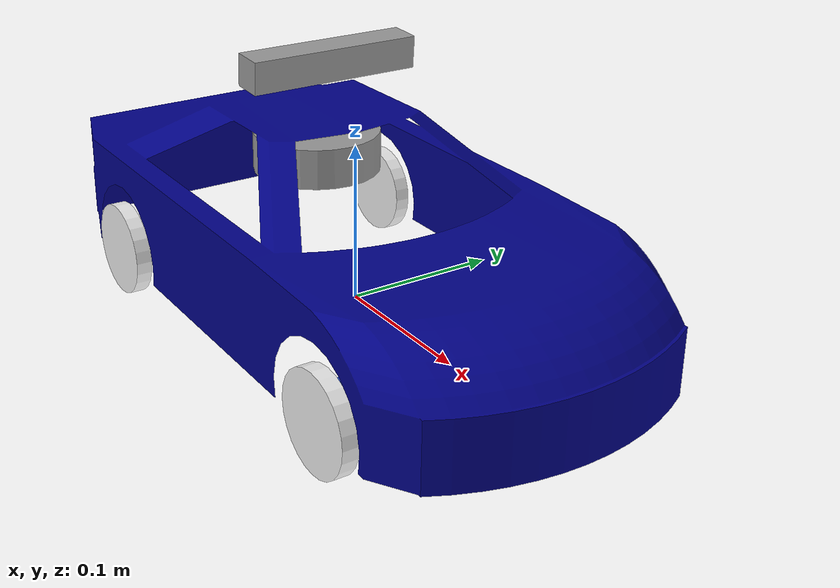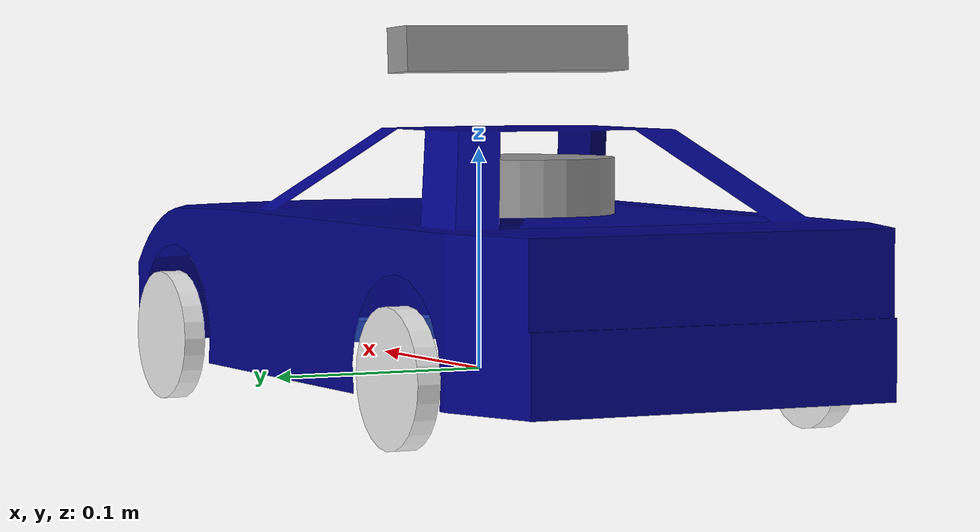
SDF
<sdf version='1.3'>
  <model name='AutoNOMOS_obstacle'>

    <link name='base_link'>
    </link>

    <link name="body">
      	<inertial>
	        <mass>6</mass>
	        <inertia>
	          <ixx>0.0067</ixx>
	          <ixy>0.000000</ixy>
	          <ixz>0.00088</ixz>
	          <iyy>0.07846</iyy>
	          <iyz>0.000000</iyz>
	          <izz>0.08387</izz>
	        </inertia>
      	</inertial>

	    <visual name="visual_body">
	      	<geometry>
				<mesh><uri>model://AutoNOMOS_mini_obstacle/meshes/autonomos.dae</uri></mesh>
	      	</geometry>
	    </visual>

	    <collision name="collision_body">
	    	<geometry>
				<mesh><uri>model://AutoNOMOS_mini_obstacle/meshes/autonomos.dae</uri></mesh>
	      	</geometry>
	    </collision>
    </link>

    <joint name="base_link_to_body" type="fixed">
    	<pose>0.000000 0.000000 0.000000 0.000000 0.000000 0.000000</pose>
    	<parent>base_link</parent>
		<child>body </child>
    </joint>

    <link name='back_left_wheel_link'>
      <pose>-0.125000 0.100000 0.0100000 1.570800 0.000000 0.000000</pose>
      <inertial>
        <mass>0.010000</mass>
        <inertia>
          <ixx>0.010000</ixx>
          <ixy>0.000000</ixy>
          <ixz>0.000000</ixz>
          <iyy>0.010000</iyy>
          <iyz>0.000000</iyz>
          <izz>0.010000</izz>
        </inertia>
      </inertial>
      <collision name='back_left_wheel_link_geom'>
        <geometry>
          <cylinder>
            <length>0.01000</length>
            <radius>0.03000</radius>
          </cylinder>
        </geometry>
      </collision>
      <visual name='back_left_wheel_link_visual'>
        <geometry>
          <cylinder>
            <length>0.01000</length>
            <radius>0.03000</radius>
          </cylinder>
        </geometry>
        <material>
          <script>
            <name>Gazebo/White</name>
          </script>
        </material>
      </visual>
    </link>

    <joint name='back_left_wheel_joint' type='revolute'>
      <child>back_left_wheel_link</child>
      <parent>base_link</parent>
      <axis>
        <xyz>0.000000 1.000000 0.000000</xyz>
        <limit>
          <lower>-10000000000000000.000000</lower>
          <upper>10000000000000000.000000</upper>
        </limit>
      </axis>
    </joint>

    <link name='back_right_wheel_link'>
      <pose>-0.125000 -0.100000 0.0100000 1.570800 0.000000 0.000000</pose>
      <inertial>
        <mass>0.010000</mass>
        <inertia>
          <ixx>0.010000</ixx>
          <ixy>0.000000</ixy>
          <ixz>0.000000</ixz>
          <iyy>0.010000</iyy>
          <iyz>0.000000</iyz>
          <izz>0.010000</izz>
        </inertia>
      </inertial>
      <collision name='back_right_wheel_link_geom'>
        <geometry>
          <cylinder>
            <length>0.01000</length>
            <radius>0.030000</radius>
          </cylinder>
        </geometry>
      </collision>
      <visual name='back_right_wheel_link_visual'>
        <geometry>
          <cylinder>
            <length>0.01000</length>
            <radius>0.030000</radius>
          </cylinder>
        </geometry>
        <material>
          <script>
            <name>Gazebo/White</name>
          </script>
        </material>
      </visual>
    </link>

    <joint name='back_right_wheel_joint' type='revolute'>
      <child>back_right_wheel_link</child>
      <parent>base_link</parent>
      <axis>
        <xyz>0.000000 1.000000 0.000000</xyz>
        <limit>
          <lower>-10000000000000000.000000</lower>
          <upper>10000000000000000.000000</upper>
        </limit>
      </axis>
    </joint>

    <link name='front_left_bar_link'>
      <pose>0.125000 0.060000 0.0100000 0.000000 0.000000 0.000000</pose>
      <inertial>
        <mass>0.010000</mass>
        <inertia>
          <ixx>0.010000</ixx>
          <ixy>0.000000</ixy>
          <ixz>0.000000</ixz>
          <iyy>0.010000</iyy>
          <iyz>0.000000</iyz>
          <izz>0.010000</izz>
        </inertia>
      </inertial>
      <collision name='front_left_bar_link_geom'>
        <geometry>
          <box>
            <size>0.040000 0.020000 0.005000</size>
          </box>
        </geometry>
      </collision>
      <visual name='front_left_bar_link_visual'>
        <geometry>
          <box>
            <size>0.040000 0.020000 0.005000</size>
          </box>
        </geometry>
        <material>
          <script>
            <name>Gazebo/Red</name>
          </script>
        </material>
      </visual>
    </link>

    <joint name='front_left_bar_joint' type='revolute'>
      <child>front_left_bar_link</child>
      <parent>base_link</parent>
      <axis>
        <xyz>0.000000 0.000000 1.000000</xyz>
        <limit>
          <lower>-0.500000</lower>
          <upper>0.500000</upper>
        </limit>
      </axis>
    </joint>

    <link name='front_left_wheel_link'>
      <pose>0.125000 0.100000 0.0100000 1.570800 0.000000 0.000000</pose>
      <inertial>
        <mass>0.010000</mass>
        <inertia>
          <ixx>0.010000</ixx>
          <ixy>0.000000</ixy>
          <ixz>0.000000</ixz>
          <iyy>0.010000</iyy>
          <iyz>0.000000</iyz>
          <izz>0.010000</izz>
        </inertia>
      </inertial>
      <collision name='front_left_wheel_link_geom'>
        <geometry>
          <cylinder>
            <length>0.01000</length>
            <radius>0.030000</radius>
          </cylinder>
        </geometry>
      </collision>
      <visual name='front_left_wheel_link_visual'>
        <geometry>
          <cylinder>
            <length>0.01000</length>
            <radius>0.030000</radius>
          </cylinder>
        </geometry>
        <material>
          <script>
            <name>Gazebo/White</name>
          </script>
        </material>
      </visual>
    </link>

    <joint name='front_left_wheel_joint' type='revolute'>
      <child>front_left_wheel_link</child>
      <parent>front_left_bar_link</parent>
      <axis>
        <xyz>0.000000 1.000000 0.000000</xyz>
        <limit>
          <lower>-10000000000000000.000000</lower>
          <upper>10000000000000000.000000</upper>
        </limit>
        <dynamics/>
      </axis>
    </joint>

    <link name='front_right_bar_link'>
      <pose>0.125000 -0.060000 0.0100000 0.000000 0.000000 0.000000</pose>
      <inertial>
        <mass>0.010000</mass>
        <inertia>
          <ixx>0.010000</ixx>
          <ixy>0.000000</ixy>
          <ixz>0.000000</ixz>
          <iyy>0.010000</iyy>
          <iyz>0.000000</iyz>
          <izz>0.010000</izz>
        </inertia>
      </inertial>
      <collision name='front_right_bar_link_geom'>
        <geometry>
          <box>
            <size>0.040000 0.020000 0.005000</size>
          </box>
        </geometry>
      </collision>
      <visual name='front_right_bar_link_visual'>
        <geometry>
          <box>
            <size>0.040000 0.020000 0.005000</size>
          </box>
        </geometry>
        <material>
          <script>
            <name>Gazebo/Red</name>
          </script>
        </material>
      </visual>
    </link>

    <joint name='front_right_bar_joint' type='revolute'>
      <child>front_right_bar_link</child>
      <parent>base_link</parent>
      <axis>
        <xyz>0.000000 0.000000 1.000000</xyz>
        <limit>
          <lower>-0.500000</lower>
          <upper>0.500000</upper>
        </limit>
        <dynamics/>
      </axis>
    </joint>

    <link name='front_right_wheel_link'>
      <pose>0.125000 -0.100000 0.0100000 1.570800 0.000000 0.000000</pose>
      <inertial>
        <mass>0.010000</mass>
        <inertia>
          <ixx>0.010000</ixx>
          <ixy>0.000000</ixy>
          <ixz>0.000000</ixz>
          <iyy>0.010000</iyy>
          <iyz>0.000000</iyz>
          <izz>0.010000</izz>
        </inertia>
      </inertial>
      <collision name='front_right_wheel_link_geom'>
        <geometry>
          <cylinder>
            <length>0.01000</length>
            <radius>0.030000</radius>
          </cylinder>
        </geometry>
      </collision>
      <visual name='front_right_wheel_link_visual'>
        <geometry>
          <cylinder>
            <length>0.01000</length>
            <radius>0.030000</radius>
          </cylinder>
        </geometry>
        <material>
          <script>
            <name>Gazebo/White</name>
          </script>
        </material>
      </visual>
    </link>

    <joint name='front_right_wheel_joint' type='revolute'>
      <child>front_right_wheel_link</child>
      <parent>front_right_bar_link</parent>
      <axis>
        <xyz>0.000000 1.000000 0.000000</xyz>
        <limit>
          <lower>-10000000000000000.000000</lower>
          <upper>10000000000000000.000000</upper>
        </limit>
        <dynamics/>
      </axis>
    </joint>

    <link name='steer_link'>
      <pose>0.125000 0.000000 0.0100000 0.000000 0.000000 0.000000</pose>
      <inertial>
        <mass>0.010000</mass>
        <inertia>
          <ixx>0.010000</ixx>
          <ixy>0.000000</ixy>
          <ixz>0.000000</ixz>
          <iyy>0.010000</iyy>
          <iyz>0.000000</iyz>
          <izz>0.010000</izz>
        </inertia>
      </inertial>
      <collision name='steer_link_geom'>
        <geometry>
          <box>
            <size>0.040000 0.020000 0.005000</size>
          </box>
        </geometry>
      </collision>
      <visual name='steer_link_visual'>
        <geometry>
          <box>
            <size>0.040000 0.020000 0.005000</size>
          </box>
        </geometry>
        <material>
          <script>
            <name>Gazebo/Red</name>
          </script>
        </material>
      </visual>
    </link>

    <joint name='steer_joint' type='revolute'>
      <child>steer_link</child>
      <parent>base_link</parent>
      <axis>
        <xyz>0.000000 0.000000 1.000000</xyz>
        <limit>
          <lower>-0.500000</lower>
          <upper>0.500000</upper>
        </limit>
        <dynamics/>
      </axis>
    </joint>

    <link name='ackermann_bar_link'>
      <pose>0.11000 0.000000 0.0100000 0.000000 0.000000 0.000000</pose>
      <inertial>
        <mass>0.010000</mass>
        <inertia>
          <ixx>0.010000</ixx>
          <ixy>0.000000</ixy>
          <ixz>0.000000</ixz>
          <iyy>0.010000</iyy>
          <iyz>0.000000</iyz>
          <izz>0.010000</izz>
        </inertia>
      </inertial>
      <collision name='ackermann_bar_link_geom'>
        <geometry>
          <box>
            <size>0.020000 0.150000 0.010000</size>
          </box>
        </geometry>
      </collision>
      <visual name='ackermann_bar_link_visual'>
        <geometry>
          <box>
            <size>0.020000 0.150000 0.010000</size>
          </box>
        </geometry>
        <material>
          <script>
            <name>Gazebo/Blue</name>
          </script>
        </material>
      </visual>
    </link>

    <joint name='ackermann_joint' type='revolute'>
      <child>ackermann_bar_link</child>
      <parent>steer_link</parent>
      <axis>
        <xyz>0.000000 0.000000 1.000000</xyz>
        <limit>
          <lower>-0.500000</lower>
          <upper>0.500000</upper>
        </limit>
        <dynamics/>
      </axis>
    </joint>

    <joint name='ackermann_left_bar_joint' type='revolute'>
      <parent>front_left_bar_link</parent>
      <child>ackermann_bar_link</child>
      <axis>
        <xyz>0.000000 0.000000 1.000000</xyz>
        <limit>
          <lower>-10000000000000000.000000</lower>
          <upper>10000000000000000.000000</upper>
        </limit>
        <dynamics/>
      </axis>
      <pose>0.000000 0.060000 0.000000 0.000000 0.000000 0.000000</pose>
    </joint>

    <joint name='ackermann_right_bar_joint' type='revolute'>
      <parent>front_right_bar_link</parent>
      <child>ackermann_bar_link</child>
      <axis>
        <xyz>0.000000 0.000000 1.000000</xyz>
        <limit>
          <lower>-10000000000000000.000000</lower>
          <upper>10000000000000000.000000</upper>
        </limit>
        <dynamics/>
      </axis>
      <pose>0.000000 -0.060000 0.000000 0.000000 0.000000 0.000000</pose>
    </joint>

    <!-- laser link -->
  	<link name="laser_link">
	  	<pose>-0.045 0.00000 0.085 0.000000 0.000000 0.000000</pose>
	    <inertial>
	    	<mass>0.1197</mass>
	        <inertia>
	          <ixx>0.010000</ixx>
	          <ixy>0.000000</ixy>
	          <ixz>0.000000</ixz>
	          <iyy>0.010000</iyy>
	          <iyz>0.000000</iyz>
	          <izz>0.010000</izz>
	        </inertia>
	    </inertial>
	    <collision name="collision_laser_link">
	    	<geometry>
	          <cylinder>
	            <length>0.02500</length>
	            <radius>0.040000</radius>
	          </cylinder>
	        </geometry>
	    </collision>
	    <visual name="visual_laser_link">
	    	<geometry>
	          <cylinder>
	            <length>0.02500</length>
	            <radius>0.040000</radius>
	          </cylinder>
	        </geometry>
	        <material>
	          <script>
	            <name>Gazebo/Gray</name>
	          </script>
	        </material>
	    </visual>
  	</link>

	<joint name="laser_joint" type="fixed">
	    <child>laser_link</child>
	    <parent>base_link</parent>
	    <axis>
	        <xyz>0.000000 0.000000 1.000000</xyz>
	    </axis>
	</joint>

	<!-- laser link -->
  	<link name="camera_link">
	  	<pose>-0.03 0.00000 0.145 0.0 0.06 0.0</pose>
	    <inertial>
	    	<mass>0.1197</mass>
	        <inertia>
	          <ixx>0.010000</ixx>
	          <ixy>0.000000</ixy>
	          <ixz>0.000000</ixz>
	          <iyy>0.010000</iyy>
	          <iyz>0.000000</iyz>
	          <izz>0.010000</izz>
	        </inertia>
	    </inertial>
	    <collision name="collision_camera_link">
	    	<geometry>
	          <box>
	            <size>0.02 0.11 0.02</size>
	          </box>
	        </geometry>
	    </collision>
	    <visual name="visual_camera_link">
	    	<geometry>
	          <box>
	            <size>0.02 0.11 0.02</size>
	          </box>
	        </geometry>
	        <material>
	          <script>
	            <name>Gazebo/Gray</name>
	          </script>
	        </material>
	    </visual>
  	</link>

	<joint name="camera_joint" type="fixed">
	    <child>camera_link</child>
	    <parent>base_link</parent>
	    <axis>
	        <xyz>0.000000 0.000000 1.000000</xyz>
	    </axis>
	</joint>

    <!-- plugin with topics to control steer and speed -->
    <plugin name="test_control" filename="libautonomos_plugin.so">
      <debug>True</debug>
    </plugin>

  </model>
</sdf>
